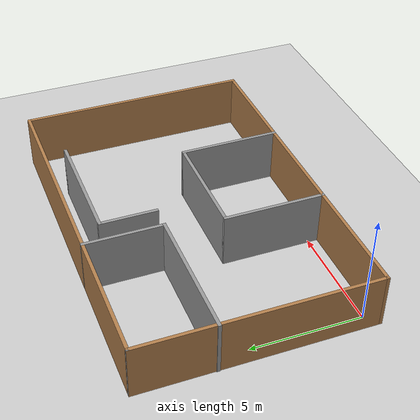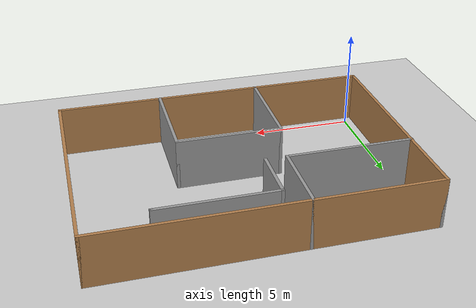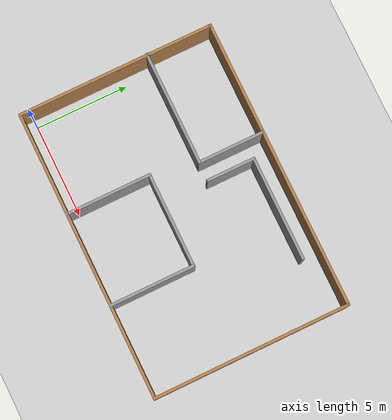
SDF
<sdf version="1.6">
 <world name="default">
  <light name="sun" type="directional">
   <pose>0 0 10 0 -0 0</pose>
   <diffuse>0.8 0.8 0.8 1</diffuse>
   <specular>0.2 0.2 0.2 1</specular>
   <attenuation>
    <range>1000</range>
    <constant>0.9</constant>
    <linear>0.01</linear>
    <quadratic>0.001</quadratic>
   </attenuation>
   <direction>-0.5 0.1 -0.9</direction>
  </light>
  <model name="ground_plane">
   <static>1</static>
   <link name="link">
    <collision name="collision">
     <geometry><plane><normal>0 0 1</normal><size>100 100</size></plane></geometry>
     <surface>
      <contact><collide_bitmask>65535</collide_bitmask></contact>
      <friction><ode><mu>100</mu><mu2>50</mu2></ode></friction>
     </surface>
    </collision>
    <visual name="visual">
     <cast_shadows>0</cast_shadows>
     <geometry><plane><normal>0 0 1</normal><size>100 100</size></plane></geometry>
     <material>
      <script><uri>file://media/materials/scripts/gazebo.material</uri><name>Gazebo/Grey</name></script>
     </material>
    </visual>
   </link>
  </model>
  <gravity>0 0 -9.8</gravity>
  <magnetic_field>6e-06 2.3e-05 -4.2e-05</magnetic_field>
  <atmosphere type="adiabatic"/>
  <physics name="default_physics" default="0" type="ode">
   <max_step_size>0.001</max_step_size>
   <real_time_factor>1</real_time_factor>
   <real_time_update_rate>1000</real_time_update_rate>
  </physics>
  <scene><ambient>0.4 0.4 0.4 1</ambient><background>0.7 0.7 0.7 1</background><shadows>1</shadows></scene>
  <audio><device>default</device></audio>
  <spherical_coordinates>
   <surface_model>EARTH_WGS84</surface_model>
   <latitude_deg>0</latitude_deg>
   <longitude_deg>0</longitude_deg>
   <elevation>0</elevation>
   <heading_deg>0</heading_deg>
  </spherical_coordinates>
  <model name="sparse_house">
   <pose>7.23525 4.75 0 0 -0 0</pose>
   <link name="Wall_0">
    <collision name="Wall_0_Collision">
     <geometry><box><size>15.65 0.15 2.5</size></box></geometry>
     <pose>0 0 1.25 0 -0 0</pose>
    </collision>
    <visual name="Wall_0_Visual">
     <pose>0 0 1.25 0 -0 0</pose>
     <geometry><box><size>15.65 0.15 2.5</size></box></geometry>
     <material>
      <script><uri>file://media/materials/scripts/gazebo.material</uri><name>Gazebo/Wood</name></script>
      <ambient>1 1 1 1</ambient>
     </material>
     <meta><layer>0</layer></meta>
    </visual>
    <pose>0.014747 5.25 0 0 -0 0</pose>
   </link>
   <link name="Wall_1">
    <collision name="Wall_1_Collision">
     <geometry><box><size>10.65 0.15 2.5</size></box></geometry>
     <pose>0 0 1.25 0 -0 0</pose>
    </collision>
    <visual name="Wall_1_Visual">
     <pose>0 0 1.25 0 -0 0</pose>
     <geometry><box><size>10.65 0.15 2.5</size></box></geometry>
     <material>
      <script><uri>file://media/materials/scripts/gazebo.material</uri><name>Gazebo/Wood</name></script>
      <ambient>1 1 1 1</ambient>
     </material>
     <meta><layer>0</layer></meta>
    </visual>
    <pose>7.76475 -0 0 0 -0 -1.5708</pose>
   </link>
   <link name="Wall_11">
    <collision name="Wall_11_Collision">
     <geometry><box><size>6.1795 0.15 2.5</size></box></geometry>
     <pose>0 0 1.25 0 -0 0</pose>
    </collision>
    <visual name="Wall_11_Visual">
     <pose>0 0 1.25 0 -0 0</pose>
     <geometry><box><size>6.1795 0.15 2.5</size></box></geometry>
     <material>
      <script><uri>file://media/materials/scripts/gazebo.material</uri><name>Gazebo/Grey</name></script>
      <ambient>1 1 1 1</ambient>
     </material>
     <meta><layer>0</layer></meta>
    </visual>
    <pose>-4.75 1.75 0 0 -0 0</pose>
   </link>
   <link name="Wall_12">
    <collision name="Wall_12_Collision">
     <geometry><box><size>3.65 0.15 2.5</size></box></geometry>
     <pose>0 0 1.25 0 -0 0</pose>
    </collision>
    <visual name="Wall_12_Visual">
     <pose>0 0 1.25 0 -0 0</pose>
     <geometry><box><size>3.65 0.15 2.5</size></box></geometry>
     <material>
      <script><uri>file://media/materials/scripts/gazebo.material</uri><name>Gazebo/Grey</name></script>
      <ambient>1 1 1 1</ambient>
     </material>
     <meta><layer>0</layer></meta>
    </visual>
    <pose>-1.73525 3.5 0 0 -0 1.5708</pose>
   </link>
   <link name="Wall_2">
    <collision name="Wall_2_Collision">
     <geometry><box><size>15.65 0.15 2.5</size></box></geometry>
     <pose>0 0 1.25 0 -0 0</pose>
    </collision>
    <visual name="Wall_2_Visual">
     <pose>0 0 1.25 0 -0 0</pose>
     <geometry><box><size>15.65 0.15 2.5</size></box></geometry>
     <material>
      <script><uri>file://media/materials/scripts/gazebo.material</uri><name>Gazebo/Wood</name></script>
      <ambient>1 1 1 1</ambient>
     </material>
     <meta><layer>0</layer></meta>
    </visual>
    <pose>0.014747 -5.25 0 0 -0 3.14159</pose>
   </link>
   <link name="Wall_3">
    <collision name="Wall_3_Collision">
     <geometry><box><size>10.65 0.15 2.5</size></box></geometry>
     <pose>0 0 1.25 0 -0 0</pose>
    </collision>
    <visual name="Wall_3_Visual">
     <pose>0 0 1.25 0 -0 0</pose>
     <geometry><box><size>10.65 0.15 2.5</size></box></geometry>
     <material>
      <script><uri>file://media/materials/scripts/gazebo.material</uri><name>Gazebo/Wood</name></script>
      <ambient>1 1 1 1</ambient>
     </material>
     <meta><layer>0</layer></meta>
    </visual>
    <pose>-7.73525 -0 0 0 -0 1.5708</pose>
   </link>
   <link name="Wall_4">
    <collision name="Wall_4_Collision">
     <geometry><box><size>0.15 0.15 2.5</size></box></geometry>
     <pose>0 0 1.25 0 -0 0</pose>
    </collision>
    <visual name="Wall_4_Visual">
     <pose>0 0 1.25 0 -0 0</pose>
     <geometry><box><size>0.15 0.15 2.5</size></box></geometry>
     <material>
      <script><uri>file://media/materials/scripts/gazebo.material</uri><name>Gazebo/Grey</name></script>
      <ambient>1 1 1 1</ambient>
     </material>
     <meta><layer>0</layer></meta>
    </visual>
    <pose>-7.73525 5.25 0 0 -0 0</pose>
   </link>
   <link name="Wall_6">
    <collision name="Wall_6_Collision">
     <geometry><box><size>4.65 0.15 2.5</size></box></geometry>
     <pose>0 0 1.25 0 -0 0</pose>
    </collision>
    <visual name="Wall_6_Visual">
     <pose>0 0 1.25 0 -0 0</pose>
     <geometry><box><size>4.65 0.15 2.5</size></box></geometry>
     <material>
      <script><uri>file://media/materials/scripts/gazebo.material</uri><name>Gazebo/Grey</name></script>
      <ambient>1 1 1 1</ambient>
     </material>
     <meta><layer>0</layer></meta>
    </visual>
    <pose>-2.23525 -3 0 0 -0 1.5708</pose>
   </link>
   <link name="Wall_7">
    <collision name="Wall_7_Collision">
     <geometry><box><size>5.15 0.15 2.5</size></box></geometry>
     <pose>0 0 1.25 0 -0 0</pose>
    </collision>
    <visual name="Wall_7_Visual">
     <pose>0 0 1.25 0 -0 0</pose>
     <geometry><box><size>5.15 0.15 2.5</size></box></geometry>
     <material>
      <script><uri>file://media/materials/scripts/gazebo.material</uri><name>Gazebo/Grey</name></script>
      <ambient>1 1 1 1</ambient>
     </material>
     <meta><layer>0</layer></meta>
    </visual>
    <pose>0.264747 -0.75 0 0 -0 0</pose>
   </link>
   <link name="Wall_8">
    <collision name="Wall_8_Collision">
     <geometry><box><size>4.65 0.15 2.5</size></box></geometry>
     <pose>0 0 1.25 0 -0 0</pose>
    </collision>
    <visual name="Wall_8_Visual">
     <pose>0 0 1.25 0 -0 0</pose>
     <geometry><box><size>4.65 0.15 2.5</size></box></geometry>
     <material>
      <script><uri>file://media/materials/scripts/gazebo.material</uri><name>Gazebo/Grey</name></script>
      <ambient>1 1 1 1</ambient>
     </material>
     <meta><layer>0</layer></meta>
    </visual>
    <pose>2.76475 -3 0 0 -0 -1.5708</pose>
   </link>
   <link name="Wall_9">
    <collision name="Wall_9_Collision">
     <geometry><box><size>0.15 0.15 2.5</size></box></geometry>
     <pose>0 0 1.25 0 -0 0</pose>
    </collision>
    <visual name="Wall_9_Visual">
     <pose>0 0 1.25 0 -0 0</pose>
     <geometry><box><size>0.15 0.15 2.5</size></box></geometry>
     <material>
      <script><uri>file://media/materials/scripts/gazebo.material</uri><name>Gazebo/Grey</name></script>
      <ambient>1 1 1 1</ambient>
     </material>
     <meta><layer>0</layer></meta>
    </visual>
    <pose>2.76475 -5.25 0 0 -0 0</pose>
   </link>
   <static>1</static>
  </model>
  <model name="sparse_house_V2">
   <pose>9.25 7.75 0 0 -0 0</pose>
   <link name="Wall_0">
    <collision name="Wall_0_Collision">
     <geometry><box><size>2.65 0.15 2.5</size></box></geometry>
     <pose>0 0 1.25 0 -0 0</pose>
    </collision>
    <visual name="Wall_0_Visual">
     <pose>0 0 1.25 0 -0 0</pose>
     <geometry><box><size>2.65 0.15 2.5</size></box></geometry>
     <material>
      <script><uri>file://media/materials/scripts/gazebo.material</uri><name>Gazebo/Grey</name></script>
      <ambient>1 1 1 1</ambient>
     </material>
     <meta><layer>0</layer></meta>
    </visual>
    <pose>-2.75 0 0 0 -0 1.5708</pose>
   </link>
   <link name="Wall_1">
    <collision name="Wall_1_Collision">
     <geometry><box><size>0.15 0.15 2.5</size></box></geometry>
     <pose>0 0 1.25 0 -0 0</pose>
    </collision>
    <visual name="Wall_1_Visual">
     <pose>0 0 1.25 0 -0 0</pose>
     <geometry><box><size>0.15 0.15 2.5</size></box></geometry>
     <material>
      <script><uri>file://media/materials/scripts/gazebo.material</uri><name>Gazebo/Grey</name></script>
      <ambient>1 1 1 1</ambient>
     </material>
     <meta><layer>0</layer></meta>
    </visual>
    <pose>-2.75 1.25 0 0 -0 0</pose>
   </link>
   <link name="Wall_3">
    <collision name="Wall_3_Collision">
     <geometry><box><size>5.65 0.15 2.5</size></box></geometry>
     <pose>0 0 1.25 0 -0 0</pose>
    </collision>
    <visual name="Wall_3_Visual">
     <pose>0 0 1.25 0 -0 0</pose>
     <geometry><box><size>5.65 0.15 2.5</size></box></geometry>
     <material>
      <script><uri>file://media/materials/scripts/gazebo.material</uri><name>Gazebo/Grey</name></script>
      <ambient>1 1 1 1</ambient>
     </material>
     <meta><layer>0</layer></meta>
    </visual>
    <pose>0 1.25 0 0 -0 0</pose>
   </link>
   <link name="Wall_4">
    <collision name="Wall_4_Collision">
     <geometry><box><size>0.15 0.15 2.5</size></box></geometry>
     <pose>0 0 1.25 0 -0 0</pose>
    </collision>
    <visual name="Wall_4_Visual">
     <pose>0 0 1.25 0 -0 0</pose>
     <geometry><box><size>0.15 0.15 2.5</size></box></geometry>
     <material>
      <script><uri>file://media/materials/scripts/gazebo.material</uri><name>Gazebo/Grey</name></script>
      <ambient>1 1 1 1</ambient>
     </material>
     <meta><layer>0</layer></meta>
    </visual>
    <pose>2.75 1.25 0 0 -0 0</pose>
   </link>
   <static>1</static>
  </model>
 </world>
</sdf>
